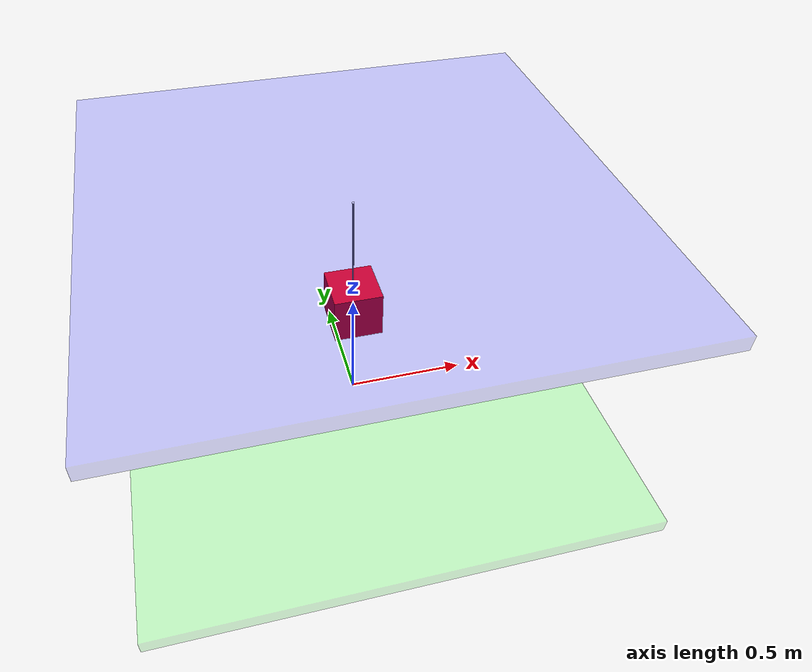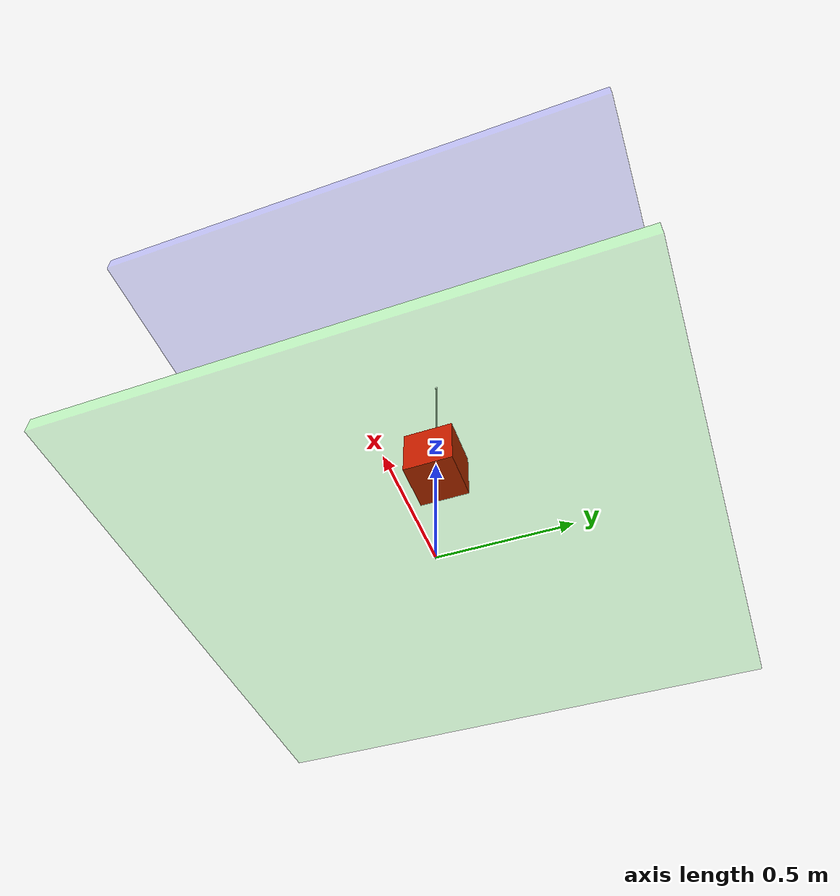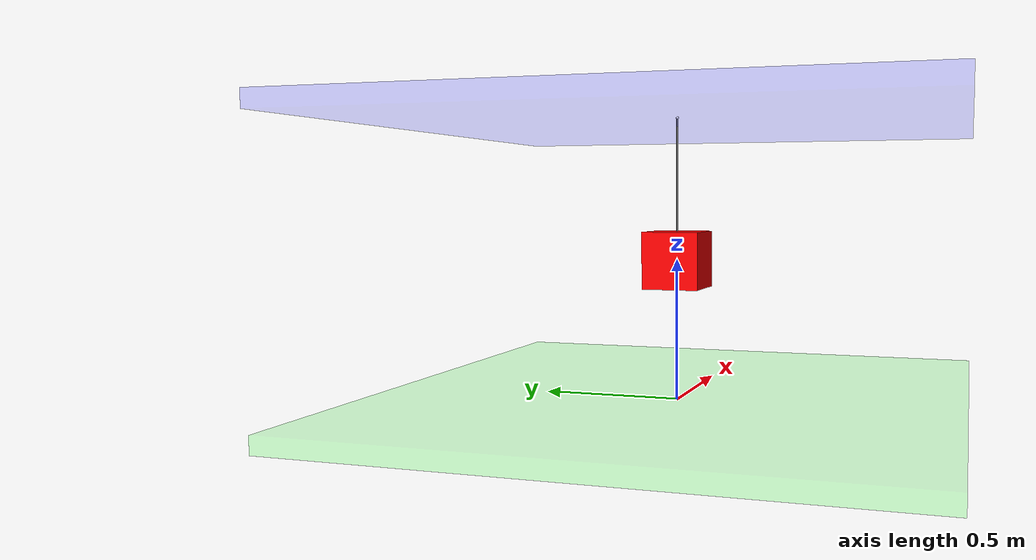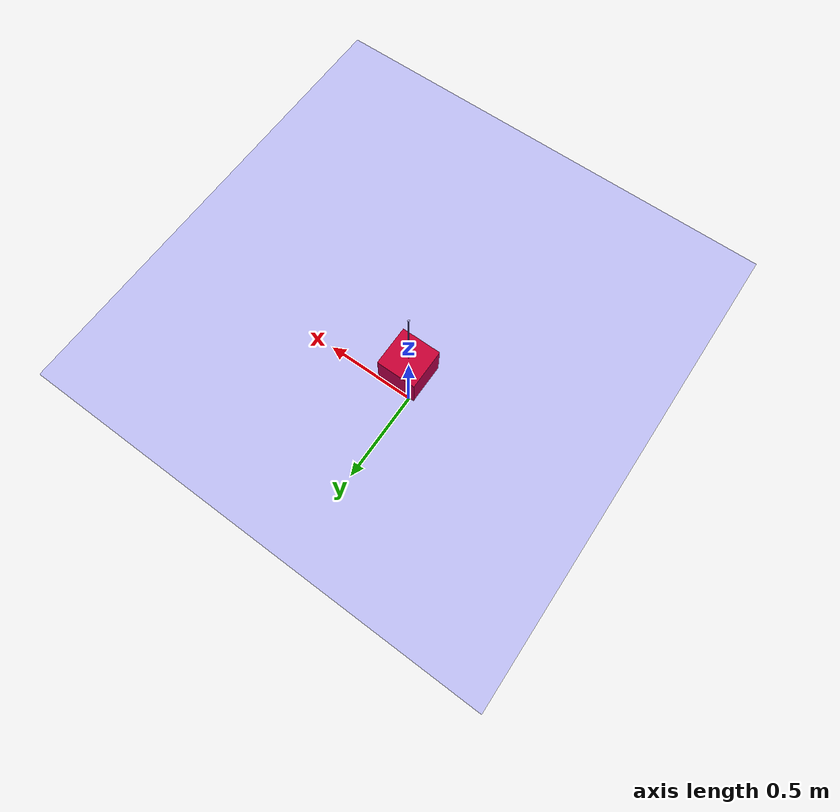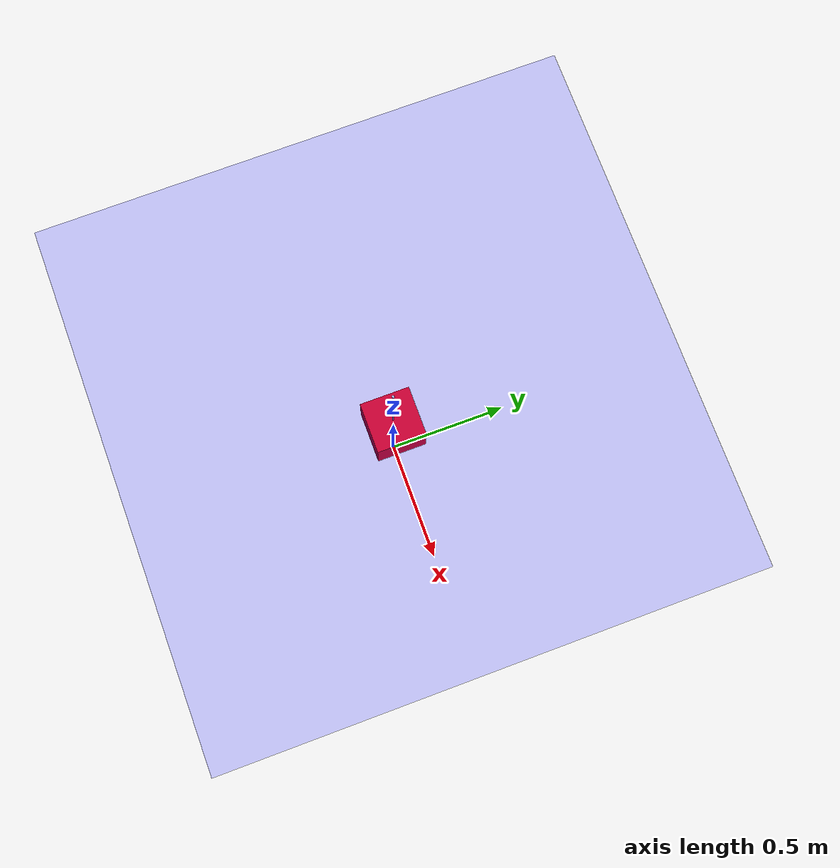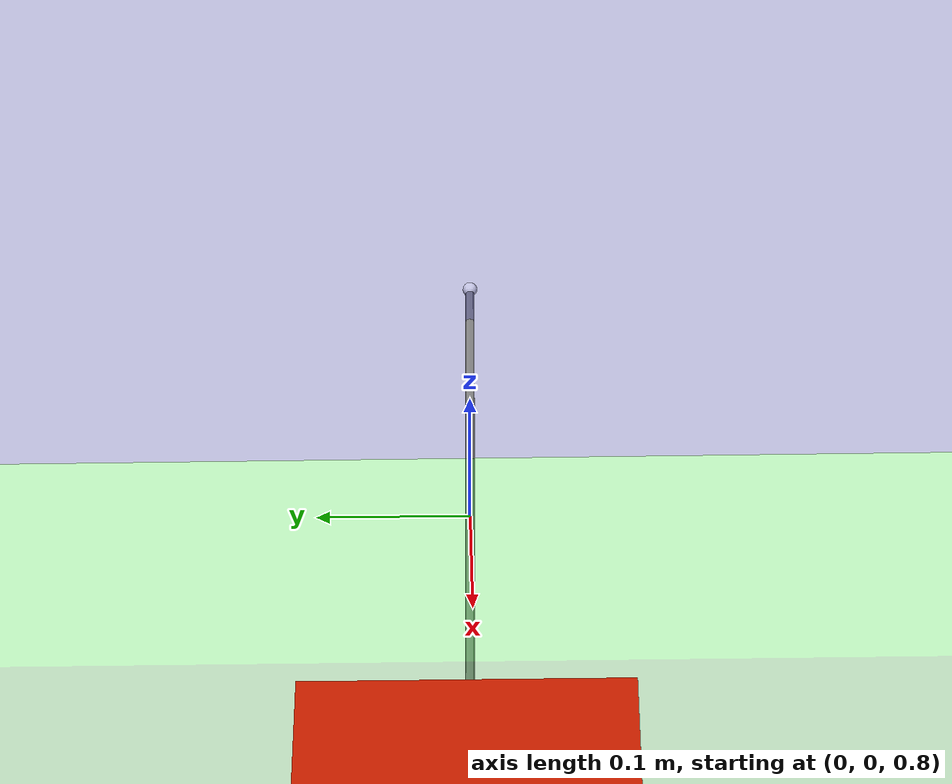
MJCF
<mujoco model="tensegrity">
  <option timestep="0.002" collision="predefined" gravity="0 0 0.0"/>

  <default>
    <site size="0.005" rgba="1 1 1 1"/>
    <default class="tendon_actuator">
      <general ctrllimited="true" ctrlrange="0 1.0" dyntype="filter" dynprm="0.02"/>
    </default>

    <default class="tendon_spatial">
      <tendon damping="5" stiffness="0" frictionloss="0.5" limited="true" range="0.3 0.6"/>
    </default>

  </default>

  <worldbody>
    <body name="wall" pos="0 0 1.0">
      <geom name="wall" type="box" size="1.0 1.0 0.03" mass="10" rgba="0 0 1 0.2" pos="0 0 0"/>
      <site name="wall" pos="0 0 0"/>
    </body>

    <body name="ground" pos="0 0 0.0">
      <geom name="ground" type="box" size="1.0 1.0 0.03" mass="10" rgba="0 1 0 0.2" pos="0 0 0"/>
      <site name="ground" pos="0 0 0"/>
    </body>

    <body name="weight" pos="0 0 0.5">
      <geom name="weight" type="box" size="0.1 0.1 0.1" mass="0.1" rgba="1 0 0 1" pos="0 0 0"/>
      <joint name="weight" type="free"/>
      <site name="weight" pos="0 0 0"/>
    </body>
  </worldbody>

  <tendon>
    <spatial name="tendon_upper" class="tendon_spatial">
      <site site="wall"/>
      <site site="weight"/>
    </spatial>
  </tendon>

  <actuator>
    <position name="act_upper" tendon="tendon_upper" kp="20" class="tendon_actuator"/>
  </actuator>

</mujoco>
